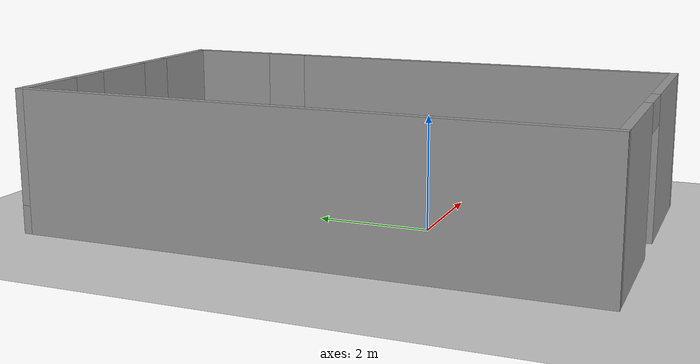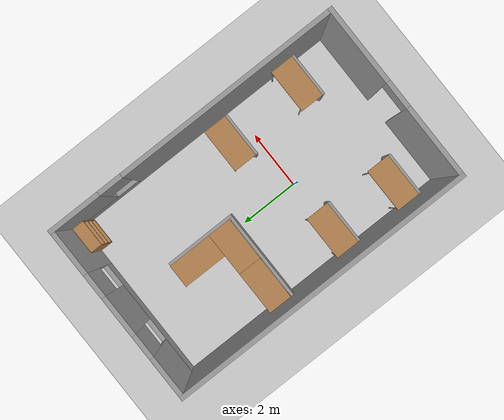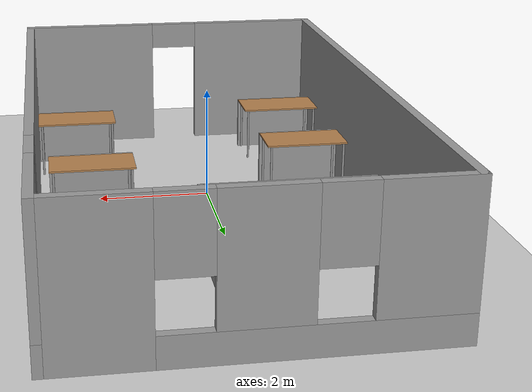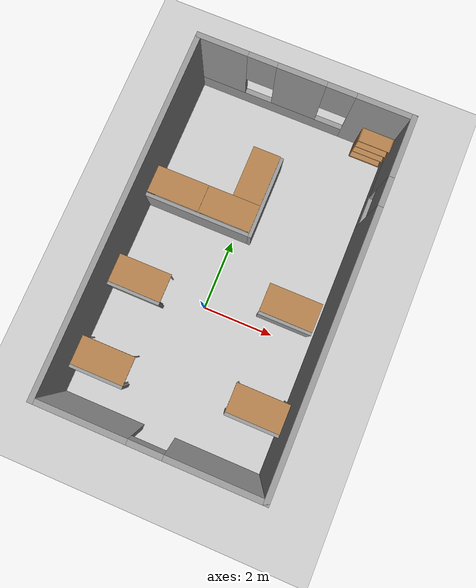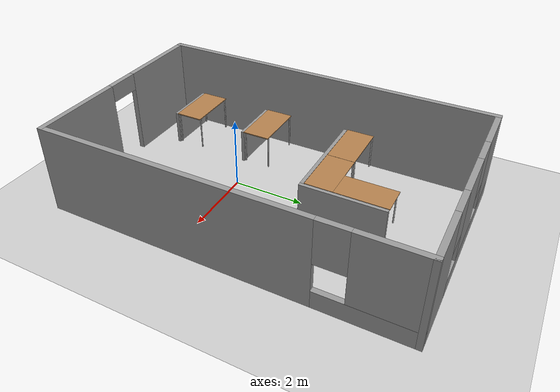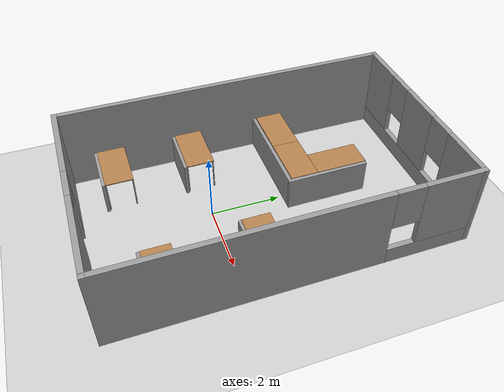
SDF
<sdf version="1.7">
 <world name="default">
  <light name="sun" type="directional">
   <pose>0 0 10 0 -0 0</pose>
   <diffuse>0.8 0.8 0.8 1</diffuse>
   <specular>0.2 0.2 0.2 1</specular>
   <attenuation>
    <range>1000</range>
    <constant>0.9</constant>
    <linear>0.01</linear>
    <quadratic>0.001</quadratic>
   </attenuation>
   <direction>-0.5 0.1 -0.9</direction>
   <spot><inner_angle>0</inner_angle><outer_angle>0</outer_angle><falloff>0</falloff></spot>
  </light>
  <model name="ground_plane">
   <static>1</static>
   <link name="link">
    <collision name="collision">
     <geometry><plane><normal>0 0 1</normal><size>100 100</size></plane></geometry>
     <surface>
      <contact><collide_bitmask>65535</collide_bitmask></contact>
      <friction><ode><mu>100</mu><mu2>50</mu2></ode></friction>
     </surface>
    </collision>
    <visual name="visual">
     <cast_shadows>0</cast_shadows>
     <geometry><plane><normal>0 0 1</normal><size>100 100</size></plane></geometry>
     <material>
      <script><uri>file://media/materials/scripts/gazebo.material</uri><name>Gazebo/Grey</name></script>
     </material>
    </visual>
   </link>
  </model>
  <gravity>0 0 -9.8</gravity>
  <magnetic_field>6e-06 2.3e-05 -4.2e-05</magnetic_field>
  <atmosphere type="adiabatic"/>
  <physics type="ode">
   <max_step_size>0.001</max_step_size>
   <real_time_factor>1</real_time_factor>
   <real_time_update_rate>1000</real_time_update_rate>
  </physics>
  <scene><ambient>0.4 0.4 0.4 1</ambient><background>0.7 0.7 0.7 1</background><shadows>1</shadows></scene>
  <spherical_coordinates>
   <surface_model>EARTH_WGS84</surface_model>
   <latitude_deg>0</latitude_deg>
   <longitude_deg>0</longitude_deg>
   <elevation>0</elevation>
   <heading_deg>0</heading_deg>
  </spherical_coordinates>
  <model name="Office">
   <pose>0.240919 1.3044 0 0 -0 0</pose>
   <link name="Wall_19">
    <collision name="Wall_19_Collision">
     <geometry><box><size>10 0.15 2.5</size></box></geometry>
     <pose>0 0 1.25 0 -0 0</pose>
    </collision>
    <visual name="Wall_19_Visual">
     <pose>0 0 1.25 0 -0 0</pose>
     <geometry><box><size>10 0.15 2.5</size></box></geometry>
     <material>
      <script><uri>file://media/materials/scripts/gazebo.material</uri><name>Gazebo/Grey</name></script>
      <ambient>1 1 1 1</ambient>
     </material>
     <meta><layer>0</layer></meta>
    </visual>
    <pose>-2.925 -0 0 0 -0 -1.5708</pose>
   </link>
   <link name="Wall_20">
    <pose>0 -4.925 0 0 -0 0</pose>
    <visual name="Wall_20_Visual_0">
     <pose>-1.75498 0 1.25 0 -0 0</pose>
     <geometry><box><size>2.49004 0.15 2.5</size></box></geometry>
     <material>
      <script><uri>file://media/materials/scripts/gazebo.material</uri><name>Gazebo/Grey</name></script>
      <ambient>1 1 1 1</ambient>
     </material>
     <meta><layer>0</layer></meta>
    </visual>
    <collision name="Wall_20_Collision_0">
     <geometry><box><size>2.49004 0.15 2.5</size></box></geometry>
     <pose>-1.75498 0 1.25 0 -0 0</pose>
    </collision>
    <visual name="Wall_20_Visual_1">
     <pose>1.69502 0 1.25 0 -0 0</pose>
     <geometry><box><size>2.60996 0.15 2.5</size></box></geometry>
     <material>
      <script><uri>file://media/materials/scripts/gazebo.material</uri><name>Gazebo/Grey</name></script>
      <ambient>1 1 1 1</ambient>
     </material>
     <meta><layer>0</layer></meta>
    </visual>
    <collision name="Wall_20_Collision_1">
     <geometry><box><size>2.60996 0.15 2.5</size></box></geometry>
     <pose>1.69502 0 1.25 0 -0 0</pose>
    </collision>
    <visual name="Wall_20_Visual_2">
     <pose>-0.05996 0 2.25 0 -0 0</pose>
     <geometry><box><size>0.9 0.15 0.5</size></box></geometry>
     <material>
      <script><uri>file://media/materials/scripts/gazebo.material</uri><name>Gazebo/Grey</name></script>
      <ambient>1 1 1 1</ambient>
     </material>
     <meta><layer>0</layer></meta>
    </visual>
    <collision name="Wall_20_Collision_2">
     <geometry><box><size>0.9 0.15 0.5</size></box></geometry>
     <pose>-0.05996 0 2.25 0 -0 0</pose>
    </collision>
   </link>
   <link name="Wall_21">
    <pose>2.925 -0 0 0 -0 1.5708</pose>
    <visual name="Wall_21_Visual_0">
     <pose>-1.26886 0 1.25 0 -0 0</pose>
     <geometry><box><size>7.46229 0.15 2.5</size></box></geometry>
     <material>
      <script><uri>file://media/materials/scripts/gazebo.material</uri><name>Gazebo/Grey</name></script>
      <ambient>1 1 1 1</ambient>
     </material>
     <meta><layer>0</layer></meta>
    </visual>
    <collision name="Wall_21_Collision_0">
     <geometry><box><size>7.46229 0.15 2.5</size></box></geometry>
     <pose>-1.26886 0 1.25 0 -0 0</pose>
    </collision>
    <visual name="Wall_21_Visual_1">
     <pose>3.73115 0 0.25 0 -0 0</pose>
     <geometry><box><size>2.53771 0.15 0.5</size></box></geometry>
     <material>
      <script><uri>file://media/materials/scripts/gazebo.material</uri><name>Gazebo/Grey</name></script>
      <ambient>1 1 1 1</ambient>
     </material>
     <meta><layer>0</layer></meta>
    </visual>
    <collision name="Wall_21_Collision_1">
     <geometry><box><size>2.53771 0.15 0.5</size></box></geometry>
     <pose>3.73115 0 0.25 0 -0 0</pose>
    </collision>
    <visual name="Wall_21_Visual_2">
     <pose>4.13115 0 1.5 0 -0 0</pose>
     <geometry><box><size>1.73771 0.15 2</size></box></geometry>
     <material>
      <script><uri>file://media/materials/scripts/gazebo.material</uri><name>Gazebo/Grey</name></script>
      <ambient>1 1 1 1</ambient>
     </material>
     <meta><layer>0</layer></meta>
    </visual>
    <collision name="Wall_21_Collision_2">
     <geometry><box><size>1.73771 0.15 2</size></box></geometry>
     <pose>4.13115 0 1.5 0 -0 0</pose>
    </collision>
    <visual name="Wall_21_Visual_3">
     <pose>2.86229 0 1.9 0 -0 0</pose>
     <geometry><box><size>0.8 0.15 1.2</size></box></geometry>
     <material>
      <script><uri>file://media/materials/scripts/gazebo.material</uri><name>Gazebo/Grey</name></script>
      <ambient>1 1 1 1</ambient>
     </material>
     <meta><layer>0</layer></meta>
    </visual>
    <collision name="Wall_21_Collision_3">
     <geometry><box><size>0.8 0.15 1.2</size></box></geometry>
     <pose>2.86229 0 1.9 0 -0 0</pose>
    </collision>
   </link>
   <link name="Wall_22">
    <pose>0 4.925 0 0 -0 3.14159</pose>
    <visual name="Wall_22_Visual_0">
     <pose>-2.1977 0 1.25 0 -0 0</pose>
     <geometry><box><size>1.6046 0.15 2.5</size></box></geometry>
     <material>
      <script><uri>file://media/materials/scripts/gazebo.material</uri><name>Gazebo/Grey</name></script>
      <ambient>1 1 1 1</ambient>
     </material>
     <meta><layer>0</layer></meta>
    </visual>
    <collision name="Wall_22_Collision_0">
     <geometry><box><size>1.6046 0.15 2.5</size></box></geometry>
     <pose>-2.1977 0 1.25 0 -0 0</pose>
    </collision>
    <visual name="Wall_22_Visual_1">
     <pose>0.802298 0 0.25 0 -0 0</pose>
     <geometry><box><size>4.3954 0.15 0.5</size></box></geometry>
     <material>
      <script><uri>file://media/materials/scripts/gazebo.material</uri><name>Gazebo/Grey</name></script>
      <ambient>1 1 1 1</ambient>
     </material>
     <meta><layer>0</layer></meta>
    </visual>
    <collision name="Wall_22_Collision_1">
     <geometry><box><size>4.3954 0.15 0.5</size></box></geometry>
     <pose>0.802298 0 0.25 0 -0 0</pose>
    </collision>
    <visual name="Wall_22_Visual_2">
     <pose>0.077549 0 1.5 0 -0 0</pose>
     <geometry><box><size>1.3459 0.15 2</size></box></geometry>
     <material>
      <script><uri>file://media/materials/scripts/gazebo.material</uri><name>Gazebo/Grey</name></script>
      <ambient>1 1 1 1</ambient>
     </material>
     <meta><layer>0</layer></meta>
    </visual>
    <collision name="Wall_22_Collision_2">
     <geometry><box><size>1.3459 0.15 2</size></box></geometry>
     <pose>0.077549 0 1.5 0 -0 0</pose>
    </collision>
    <visual name="Wall_22_Visual_3">
     <pose>2.27525 0 1.5 0 -0 0</pose>
     <geometry><box><size>1.4495 0.15 2</size></box></geometry>
     <material>
      <script><uri>file://media/materials/scripts/gazebo.material</uri><name>Gazebo/Grey</name></script>
      <ambient>1 1 1 1</ambient>
     </material>
     <meta><layer>0</layer></meta>
    </visual>
    <collision name="Wall_22_Collision_3">
     <geometry><box><size>1.4495 0.15 2</size></box></geometry>
     <pose>2.27525 0 1.5 0 -0 0</pose>
    </collision>
    <visual name="Wall_22_Visual_4">
     <pose>-0.995403 0 1.9 0 -0 0</pose>
     <geometry><box><size>0.8 0.15 1.2</size></box></geometry>
     <material>
      <script><uri>file://media/materials/scripts/gazebo.material</uri><name>Gazebo/Grey</name></script>
      <ambient>1 1 1 1</ambient>
     </material>
     <meta><layer>0</layer></meta>
    </visual>
    <collision name="Wall_22_Collision_4">
     <geometry><box><size>0.8 0.15 1.2</size></box></geometry>
     <pose>-0.995403 0 1.9 0 -0 0</pose>
    </collision>
    <visual name="Wall_22_Visual_5">
     <pose>1.1505 0 1.9 0 -0 0</pose>
     <geometry><box><size>0.8 0.15 1.2</size></box></geometry>
     <material>
      <script><uri>file://media/materials/scripts/gazebo.material</uri><name>Gazebo/Grey</name></script>
      <ambient>1 1 1 1</ambient>
     </material>
     <meta><layer>0</layer></meta>
    </visual>
    <collision name="Wall_22_Collision_5">
     <geometry><box><size>0.8 0.15 1.2</size></box></geometry>
     <pose>1.1505 0 1.9 0 -0 0</pose>
    </collision>
   </link>
   <static>1</static>
  </model>
  <model name="table_5_0">
   <link name="link_3">
    <inertial>
     <mass>0.130533</mass>
     <inertia>
      <ixx>0.0109602</ixx>
      <ixy>0</ixy>
      <ixz>0</ixz>
      <iyy>0.0353327</iyy>
      <iyz>0</iyz>
      <izz>0.0245374</izz>
     </inertia>
    </inertial>
    <pose>-3.20461 -3.49782 0.5 0 -0 0</pose>
    <visual name="visual">
     <geometry><box><size>1.49938 0.08705 1</size></box></geometry>
     <material>
      <lighting>1</lighting>
      <script><uri>file://media/materials/scripts/gazebo.material</uri><name>Gazebo/Grey</name></script>
      <shader type="pixel"/>
      <emissive>0 0 0 1</emissive>
     </material>
    </visual>
    <collision name="collision">
     <geometry><box><size>1.49938 0.08705 1</size></box></geometry>
     <surface>
      <friction>
       <ode><mu>1</mu><mu2>1</mu2><fdir1>0 0 0</fdir1><slip1>0</slip1><slip2>0</slip2></ode>
       <torsional>
        <coefficient>1</coefficient>
        <patch_radius>0</patch_radius>
        <surface_radius>0</surface_radius>
        <use_patch_radius>1</use_patch_radius>
        <ode><slip>0</slip></ode>
       </torsional>
      </friction>
      <bounce><restitution_coefficient>0</restitution_coefficient><threshold>1e+06</threshold></bounce>
      <contact>
       <collide_without_contact>0</collide_without_contact>
       <collide_without_contact_bitmask>1</collide_without_contact_bitmask>
       <collide_bitmask>1</collide_bitmask>
       <ode>
        <soft_cfm>0</soft_cfm>
        <soft_erp>0.2</soft_erp>
        <kp>1e+13</kp>
        <kd>1</kd>
        <max_vel>0.01</max_vel>
        <min_depth>0</min_depth>
       </ode>
       <bullet>
        <split_impulse>1</split_impulse>
        <split_impulse_penetration_threshold>-0.01</split_impulse_penetration_threshold>
        <soft_cfm>0</soft_cfm>
        <soft_erp>0.2</soft_erp>
        <kp>1e+13</kp>
        <kd>1</kd>
       </bullet>
      </contact>
     </surface>
    </collision>
   </link>
   <model name="table">
    <static>1</static>
    <link name="link">
     <collision name="surface">
      <pose>0 0 1 0 -0 0</pose>
      <geometry><box><size>1.5 0.8 0.03</size></box></geometry>
      <surface><friction><ode><mu>0.6</mu><mu2>0.6</mu2></ode></friction></surface>
     </collision>
     <visual name="visual1">
      <pose>0 0 1 0 -0 0</pose>
      <geometry><box><size>1.5 0.8 0.03</size></box></geometry>
      <material>
       <script><uri>file://media/materials/scripts/gazebo.material</uri><name>Gazebo/Wood</name></script>
      </material>
     </visual>
     <collision name="front_left_leg">
      <pose>0.68 0.38 0.5 0 -0 0</pose>
      <geometry><cylinder><radius>0.02</radius><length>1</length></cylinder></geometry>
     </collision>
     <visual name="front_left_leg">
      <pose>0.68 0.38 0.5 0 -0 0</pose>
      <geometry><cylinder><radius>0.02</radius><length>1</length></cylinder></geometry>
      <material>
       <script><uri>file://media/materials/scripts/gazebo.material</uri><name>Gazebo/Grey</name></script>
      </material>
     </visual>
     <collision name="front_right_leg">
      <pose>0.68 -0.38 0.5 0 -0 0</pose>
      <geometry><cylinder><radius>0.02</radius><length>1</length></cylinder></geometry>
     </collision>
     <visual name="front_right_leg">
      <pose>0.68 -0.38 0.5 0 -0 0</pose>
      <geometry><cylinder><radius>0.02</radius><length>1</length></cylinder></geometry>
      <material>
       <script><uri>file://media/materials/scripts/gazebo.material</uri><name>Gazebo/Grey</name></script>
      </material>
     </visual>
     <collision name="back_right_leg">
      <pose>-0.68 -0.38 0.5 0 -0 0</pose>
      <geometry><cylinder><radius>0.02</radius><length>1</length></cylinder></geometry>
     </collision>
     <visual name="back_right_leg">
      <pose>-0.68 -0.38 0.5 0 -0 0</pose>
      <geometry><cylinder><radius>0.02</radius><length>1</length></cylinder></geometry>
      <material>
       <script><uri>file://media/materials/scripts/gazebo.material</uri><name>Gazebo/Grey</name></script>
      </material>
     </visual>
     <collision name="back_left_leg">
      <pose>-0.68 0.38 0.5 0 -0 0</pose>
      <geometry><cylinder><radius>0.02</radius><length>1</length></cylinder></geometry>
     </collision>
     <visual name="back_left_leg">
      <pose>-0.68 0.38 0.5 0 -0 0</pose>
      <geometry><cylinder><radius>0.02</radius><length>1</length></cylinder></geometry>
      <material>
       <script><uri>file://media/materials/scripts/gazebo.material</uri><name>Gazebo/Grey</name></script>
      </material>
     </visual>
    </link>
    <pose>-3.20351 -3.05374 0 0 -0 0</pose>
   </model>
   <joint name="link_3_JOINT_3" type="fixed">
    <parent>table::link</parent>
    <child>link_3</child>
    <physics>
     <ode><limit><cfm>0</cfm><erp>0.2</erp></limit><suspension><cfm>0</cfm><erp>0.2</erp></suspension></ode>
    </physics>
   </joint>
   <static>0</static>
   <pose>5.53797 1.15598 0 0 -0 0</pose>
  </model>
  <model name="table_5_2">
   <link name="link_3">
    <inertial>
     <mass>0.130533</mass>
     <inertia>
      <ixx>0.0109602</ixx>
      <ixy>0</ixy>
      <ixz>0</ixz>
      <iyy>0.0353327</iyy>
      <iyz>0</iyz>
      <izz>0.0245374</izz>
     </inertia>
    </inertial>
    <pose>-3.20461 -3.49782 0.5 0 -0 0</pose>
    <visual name="visual">
     <geometry><box><size>1.49938 0.08705 1</size></box></geometry>
     <material>
      <lighting>1</lighting>
      <script><uri>file://media/materials/scripts/gazebo.material</uri><name>Gazebo/Grey</name></script>
      <shader type="pixel"/>
      <emissive>0 0 0 1</emissive>
     </material>
    </visual>
    <collision name="collision">
     <geometry><box><size>1.49938 0.08705 1</size></box></geometry>
     <surface>
      <friction>
       <ode><mu>1</mu><mu2>1</mu2><fdir1>0 0 0</fdir1><slip1>0</slip1><slip2>0</slip2></ode>
       <torsional>
        <coefficient>1</coefficient>
        <patch_radius>0</patch_radius>
        <surface_radius>0</surface_radius>
        <use_patch_radius>1</use_patch_radius>
        <ode><slip>0</slip></ode>
       </torsional>
      </friction>
      <bounce><restitution_coefficient>0</restitution_coefficient><threshold>1e+06</threshold></bounce>
      <contact>
       <collide_without_contact>0</collide_without_contact>
       <collide_without_contact_bitmask>1</collide_without_contact_bitmask>
       <collide_bitmask>1</collide_bitmask>
       <ode>
        <soft_cfm>0</soft_cfm>
        <soft_erp>0.2</soft_erp>
        <kp>1e+13</kp>
        <kd>1</kd>
        <max_vel>0.01</max_vel>
        <min_depth>0</min_depth>
       </ode>
       <bullet>
        <split_impulse>1</split_impulse>
        <split_impulse_penetration_threshold>-0.01</split_impulse_penetration_threshold>
        <soft_cfm>0</soft_cfm>
        <soft_erp>0.2</soft_erp>
        <kp>1e+13</kp>
        <kd>1</kd>
       </bullet>
      </contact>
     </surface>
    </collision>
   </link>
   <model name="table">
    <static>1</static>
    <link name="link">
     <collision name="surface">
      <pose>0 0 1 0 -0 0</pose>
      <geometry><box><size>1.5 0.8 0.03</size></box></geometry>
      <surface><friction><ode><mu>0.6</mu><mu2>0.6</mu2></ode></friction></surface>
     </collision>
     <visual name="visual1">
      <pose>0 0 1 0 -0 0</pose>
      <geometry><box><size>1.5 0.8 0.03</size></box></geometry>
      <material>
       <script><uri>file://media/materials/scripts/gazebo.material</uri><name>Gazebo/Wood</name></script>
      </material>
     </visual>
     <collision name="front_left_leg">
      <pose>0.68 0.38 0.5 0 -0 0</pose>
      <geometry><cylinder><radius>0.02</radius><length>1</length></cylinder></geometry>
     </collision>
     <visual name="front_left_leg">
      <pose>0.68 0.38 0.5 0 -0 0</pose>
      <geometry><cylinder><radius>0.02</radius><length>1</length></cylinder></geometry>
      <material>
       <script><uri>file://media/materials/scripts/gazebo.material</uri><name>Gazebo/Grey</name></script>
      </material>
     </visual>
     <collision name="front_right_leg">
      <pose>0.68 -0.38 0.5 0 -0 0</pose>
      <geometry><cylinder><radius>0.02</radius><length>1</length></cylinder></geometry>
     </collision>
     <visual name="front_right_leg">
      <pose>0.68 -0.38 0.5 0 -0 0</pose>
      <geometry><cylinder><radius>0.02</radius><length>1</length></cylinder></geometry>
      <material>
       <script><uri>file://media/materials/scripts/gazebo.material</uri><name>Gazebo/Grey</name></script>
      </material>
     </visual>
     <collision name="back_right_leg">
      <pose>-0.68 -0.38 0.5 0 -0 0</pose>
      <geometry><cylinder><radius>0.02</radius><length>1</length></cylinder></geometry>
     </collision>
     <visual name="back_right_leg">
      <pose>-0.68 -0.38 0.5 0 -0 0</pose>
      <geometry><cylinder><radius>0.02</radius><length>1</length></cylinder></geometry>
      <material>
       <script><uri>file://media/materials/scripts/gazebo.material</uri><name>Gazebo/Grey</name></script>
      </material>
     </visual>
     <collision name="back_left_leg">
      <pose>-0.68 0.38 0.5 0 -0 0</pose>
      <geometry><cylinder><radius>0.02</radius><length>1</length></cylinder></geometry>
     </collision>
     <visual name="back_left_leg">
      <pose>-0.68 0.38 0.5 0 -0 0</pose>
      <geometry><cylinder><radius>0.02</radius><length>1</length></cylinder></geometry>
      <material>
       <script><uri>file://media/materials/scripts/gazebo.material</uri><name>Gazebo/Grey</name></script>
      </material>
     </visual>
    </link>
    <pose>-3.20351 -3.05374 0 0 -0 0</pose>
   </model>
   <joint name="link_3_JOINT_3" type="fixed">
    <parent>table::link</parent>
    <child>link_3</child>
    <physics>
     <ode><limit><cfm>0</cfm><erp>0.2</erp></limit><suspension><cfm>0</cfm><erp>0.2</erp></suspension></ode>
    </physics>
   </joint>
   <static>0</static>
   <pose>5.3714 3.87008 0 0 -0 0</pose>
  </model>
  <model name="table_7">
   <model name="table_6">
    <link name="link_0">
     <inertial>
      <mass>0.303459</mass>
      <inertia>
       <ixx>0.0255487</ixx>
       <ixy>0</ixy>
       <ixz>0</ixz>
       <iyy>0.252958</iyy>
       <iyz>0</iyz>
       <izz>0.22793</izz>
      </inertia>
     </inertial>
     <pose>-0.527803 -0.738971 0.3 0 -0 0</pose>
     <visual name="visual">
      <pose>0 0 0.2 0 -0 0</pose>
      <geometry><box><size>3.0005 0.101492 1</size></box></geometry>
      <material>
       <lighting>1</lighting>
       <script><uri>file://media/materials/scripts/gazebo.material</uri><name>Gazebo/Grey</name></script>
       <shader type="pixel"/>
       <emissive>0 0 0 1</emissive>
      </material>
     </visual>
     <collision name="collision">
      <pose>0 0 0.2 0 -0 0</pose>
      <geometry><box><size>3.0005 0.101492 1</size></box></geometry>
      <surface>
       <friction>
        <ode><mu>1</mu><mu2>1</mu2><fdir1>0 0 0</fdir1><slip1>0</slip1><slip2>0</slip2></ode>
        <torsional>
         <coefficient>1</coefficient>
         <patch_radius>0</patch_radius>
         <surface_radius>0</surface_radius>
         <use_patch_radius>1</use_patch_radius>
         <ode><slip>0</slip></ode>
        </torsional>
       </friction>
       <bounce><restitution_coefficient>0</restitution_coefficient><threshold>1e+06</threshold></bounce>
       <contact>
        <collide_without_contact>0</collide_without_contact>
        <collide_without_contact_bitmask>1</collide_without_contact_bitmask>
        <collide_bitmask>1</collide_bitmask>
        <ode>
         <soft_cfm>0</soft_cfm>
         <soft_erp>0.2</soft_erp>
         <kp>1e+13</kp>
         <kd>1</kd>
         <max_vel>0.01</max_vel>
         <min_depth>0</min_depth>
        </ode>
        <bullet>
         <split_impulse>1</split_impulse>
         <split_impulse_penetration_threshold>-0.01</split_impulse_penetration_threshold>
         <soft_cfm>0</soft_cfm>
         <soft_erp>0.2</soft_erp>
         <kp>1e+13</kp>
         <kd>1</kd>
        </bullet>
       </contact>
      </surface>
     </collision>
    </link>
    <link name="link_0_clone">
     <inertial>
      <mass>0.24261</mass>
      <inertia>
       <ixx>0.0204257</ixx>
       <ixy>0</ixy>
       <ixz>0</ixz>
       <iyy>0.136557</iyy>
       <iyz>0</iyz>
       <izz>0.116548</izz>
      </inertia>
     </inertial>
     <pose>1.01932 0.409769 0.3 0 -0 1.57322</pose>
     <visual name="visual">
      <pose>0 0 0.2 0 -0 0</pose>
      <geometry><box><size>2.39884 0.101492 1</size></box></geometry>
      <material>
       <lighting>1</lighting>
       <script><uri>file://media/materials/scripts/gazebo.material</uri><name>Gazebo/Grey</name></script>
       <shader type="pixel"/>
       <emissive>0 0 0 1</emissive>
      </material>
     </visual>
     <collision name="collision">
      <pose>0 0 0.2 0 -0 0</pose>
      <geometry><box><size>2.39884 0.101492 1</size></box></geometry>
      <surface>
       <friction>
        <ode><mu>1</mu><mu2>1</mu2><fdir1>0 0 0</fdir1><slip1>0</slip1><slip2>0</slip2></ode>
        <torsional>
         <coefficient>1</coefficient>
         <patch_radius>0</patch_radius>
         <surface_radius>0</surface_radius>
         <use_patch_radius>1</use_patch_radius>
         <ode><slip>0</slip></ode>
        </torsional>
       </friction>
       <bounce><restitution_coefficient>0</restitution_coefficient><threshold>1e+06</threshold></bounce>
       <contact>
        <collide_without_contact>0</collide_without_contact>
        <collide_without_contact_bitmask>1</collide_without_contact_bitmask>
        <collide_bitmask>1</collide_bitmask>
        <ode>
         <soft_cfm>0</soft_cfm>
         <soft_erp>0.2</soft_erp>
         <kp>1e+13</kp>
         <kd>1</kd>
         <max_vel>0.01</max_vel>
         <min_depth>0</min_depth>
        </ode>
        <bullet>
         <split_impulse>1</split_impulse>
         <split_impulse_penetration_threshold>-0.01</split_impulse_penetration_threshold>
         <soft_cfm>0</soft_cfm>
         <soft_erp>0.2</soft_erp>
         <kp>1e+13</kp>
         <kd>1</kd>
        </bullet>
       </contact>
      </surface>
     </collision>
    </link>
    <model name="table">
     <static>1</static>
     <link name="link">
      <collision name="surface">
       <pose>0 0 1 0 -0 0</pose>
       <geometry><box><size>1.5 0.8 0.03</size></box></geometry>
       <surface><friction><ode><mu>0.6</mu><mu2>0.6</mu2></ode></friction></surface>
      </collision>
      <visual name="visual1">
       <pose>0 0 1 0 -0 0</pose>
       <geometry><box><size>1.5 0.8 0.03</size></box></geometry>
       <material>
        <script><uri>file://media/materials/scripts/gazebo.material</uri><name>Gazebo/Wood</name></script>
       </material>
      </visual>
      <collision name="front_left_leg">
       <pose>0.68 0.38 0.5 0 -0 0</pose>
       <geometry><cylinder><radius>0.02</radius><length>1</length></cylinder></geometry>
      </collision>
      <visual name="front_left_leg">
       <pose>0.68 0.38 0.5 0 -0 0</pose>
       <geometry><cylinder><radius>0.02</radius><length>1</length></cylinder></geometry>
       <material>
        <script><uri>file://media/materials/scripts/gazebo.material</uri><name>Gazebo/Grey</name></script>
       </material>
      </visual>
      <collision name="front_right_leg">
       <pose>0.68 -0.38 0.5 0 -0 0</pose>
       <geometry><cylinder><radius>0.02</radius><length>1</length></cylinder></geometry>
      </collision>
      <visual name="front_right_leg">
       <pose>0.68 -0.38 0.5 0 -0 0</pose>
       <geometry><cylinder><radius>0.02</radius><length>1</length></cylinder></geometry>
       <material>
        <script><uri>file://media/materials/scripts/gazebo.material</uri><name>Gazebo/Grey</name></script>
       </material>
      </visual>
      <collision name="back_right_leg">
       <pose>-0.68 -0.38 0.5 0 -0 0</pose>
       <geometry><cylinder><radius>0.02</radius><length>1</length></cylinder></geometry>
      </collision>
      <visual name="back_right_leg">
       <pose>-0.68 -0.38 0.5 0 -0 0</pose>
       <geometry><cylinder><radius>0.02</radius><length>1</length></cylinder></geometry>
       <material>
        <script><uri>file://media/materials/scripts/gazebo.material</uri><name>Gazebo/Grey</name></script>
       </material>
      </visual>
      <collision name="back_left_leg">
       <pose>-0.68 0.38 0.5 0 -0 0</pose>
       <geometry><cylinder><radius>0.02</radius><length>1</length></cylinder></geometry>
      </collision>
      <visual name="back_left_leg">
       <pose>-0.68 0.38 0.5 0 -0 0</pose>
       <geometry><cylinder><radius>0.02</radius><length>1</length></cylinder></geometry>
       <material>
        <script><uri>file://media/materials/scripts/gazebo.material</uri><name>Gazebo/Grey</name></script>
       </material>
      </visual>
     </link>
     <pose>-1.28127 -0.273662 0 0 -0 0</pose>
    </model>
    <model name="table_0">
     <static>1</static>
     <link name="link">
      <collision name="surface">
       <pose>0 0 1 0 -0 0</pose>
       <geometry><box><size>1.5 0.8 0.03</size></box></geometry>
       <surface><friction><ode><mu>0.6</mu><mu2>0.6</mu2></ode></friction></surface>
      </collision>
      <visual name="visual1">
       <pose>0 0 1 0 -0 0</pose>
       <geometry><box><size>1.5 0.8 0.03</size></box></geometry>
       <material>
        <script><uri>file://media/materials/scripts/gazebo.material</uri><name>Gazebo/Wood</name></script>
       </material>
      </visual>
      <collision name="front_left_leg">
       <pose>0.68 0.38 0.5 0 -0 0</pose>
       <geometry><cylinder><radius>0.02</radius><length>1</length></cylinder></geometry>
      </collision>
      <visual name="front_left_leg">
       <pose>0.68 0.38 0.5 0 -0 0</pose>
       <geometry><cylinder><radius>0.02</radius><length>1</length></cylinder></geometry>
       <material>
        <script><uri>file://media/materials/scripts/gazebo.material</uri><name>Gazebo/Grey</name></script>
       </material>
      </visual>
      <collision name="front_right_leg">
       <pose>0.68 -0.38 0.5 0 -0 0</pose>
       <geometry><cylinder><radius>0.02</radius><length>1</length></cylinder></geometry>
      </collision>
      <visual name="front_right_leg">
       <pose>0.68 -0.38 0.5 0 -0 0</pose>
       <geometry><cylinder><radius>0.02</radius><length>1</length></cylinder></geometry>
       <material>
        <script><uri>file://media/materials/scripts/gazebo.material</uri><name>Gazebo/Grey</name></script>
       </material>
      </visual>
      <collision name="back_right_leg">
       <pose>-0.68 -0.38 0.5 0 -0 0</pose>
       <geometry><cylinder><radius>0.02</radius><length>1</length></cylinder></geometry>
      </collision>
      <visual name="back_right_leg">
       <pose>-0.68 -0.38 0.5 0 -0 0</pose>
       <geometry><cylinder><radius>0.02</radius><length>1</length></cylinder></geometry>
       <material>
        <script><uri>file://media/materials/scripts/gazebo.material</uri><name>Gazebo/Grey</name></script>
       </material>
      </visual>
      <collision name="back_left_leg">
       <pose>-0.68 0.38 0.5 0 -0 0</pose>
       <geometry><cylinder><radius>0.02</radius><length>1</length></cylinder></geometry>
      </collision>
      <visual name="back_left_leg">
       <pose>-0.68 0.38 0.5 0 -0 0</pose>
       <geometry><cylinder><radius>0.02</radius><length>1</length></cylinder></geometry>
       <material>
        <script><uri>file://media/materials/scripts/gazebo.material</uri><name>Gazebo/Grey</name></script>
       </material>
      </visual>
     </link>
     <pose>0.219703 -0.273508 0 0 -0 0</pose>
    </model>
    <model name="table_1">
     <static>1</static>
     <link name="link">
      <collision name="surface">
       <pose>0 0 1 0 -0 0</pose>
       <geometry><box><size>1.5 0.8 0.03</size></box></geometry>
       <surface><friction><ode><mu>0.6</mu><mu2>0.6</mu2></ode></friction></surface>
      </collision>
      <visual name="visual1">
       <pose>0 0 1 0 -0 0</pose>
       <geometry><box><size>1.5 0.8 0.03</size></box></geometry>
       <material>
        <script><uri>file://media/materials/scripts/gazebo.material</uri><name>Gazebo/Wood</name></script>
       </material>
      </visual>
      <collision name="front_left_leg">
       <pose>0.68 0.38 0.5 0 -0 0</pose>
       <geometry><cylinder><radius>0.02</radius><length>1</length></cylinder></geometry>
      </collision>
      <visual name="front_left_leg">
       <pose>0.68 0.38 0.5 0 -0 0</pose>
       <geometry><cylinder><radius>0.02</radius><length>1</length></cylinder></geometry>
       <material>
        <script><uri>file://media/materials/scripts/gazebo.material</uri><name>Gazebo/Grey</name></script>
       </material>
      </visual>
      <collision name="front_right_leg">
       <pose>0.68 -0.38 0.5 0 -0 0</pose>
       <geometry><cylinder><radius>0.02</radius><length>1</length></cylinder></geometry>
      </collision>
      <visual name="front_right_leg">
       <pose>0.68 -0.38 0.5 0 -0 0</pose>
       <geometry><cylinder><radius>0.02</radius><length>1</length></cylinder></geometry>
       <material>
        <script><uri>file://media/materials/scripts/gazebo.material</uri><name>Gazebo/Grey</name></script>
       </material>
      </visual>
      <collision name="back_right_leg">
       <pose>-0.68 -0.38 0.5 0 -0 0</pose>
       <geometry><cylinder><radius>0.02</radius><length>1</length></cylinder></geometry>
      </collision>
      <visual name="back_right_leg">
       <pose>-0.68 -0.38 0.5 0 -0 0</pose>
       <geometry><cylinder><radius>0.02</radius><length>1</length></cylinder></geometry>
       <material>
        <script><uri>file://media/materials/scripts/gazebo.material</uri><name>Gazebo/Grey</name></script>
       </material>
      </visual>
      <collision name="back_left_leg">
       <pose>-0.68 0.38 0.5 0 -0 0</pose>
       <geometry><cylinder><radius>0.02</radius><length>1</length></cylinder></geometry>
      </collision>
      <visual name="back_left_leg">
       <pose>-0.68 0.38 0.5 0 -0 0</pose>
       <geometry><cylinder><radius>0.02</radius><length>1</length></cylinder></geometry>
       <material>
        <script><uri>file://media/materials/scripts/gazebo.material</uri><name>Gazebo/Grey</name></script>
       </material>
      </visual>
     </link>
     <pose>0.570046 0.876371 0 0 -0 1.57061</pose>
    </model>
    <joint name="link_0_JOINT_1" type="fixed">
     <parent>link_0</parent>
     <child>table_0::link</child>
     <physics>
      <ode><limit><cfm>0</cfm><erp>0.2</erp></limit><suspension><cfm>0</cfm><erp>0.2</erp></suspension></ode>
     </physics>
    </joint>
    <joint name="link_0_clone_JOINT_3" type="fixed">
     <parent>link_0_clone</parent>
     <child>table_0::link</child>
     <physics>
      <ode><limit><cfm>0</cfm><erp>0.2</erp></limit><suspension><cfm>0</cfm><erp>0.2</erp></suspension></ode>
     </physics>
    </joint>
    <joint name="link_0_clone_JOINT_4" type="fixed">
     <parent>link_0_clone</parent>
     <child>link_0</child>
     <physics>
      <ode><limit><cfm>0</cfm><erp>0.2</erp></limit><suspension><cfm>0</cfm><erp>0.2</erp></suspension></ode>
     </physics>
    </joint>
    <joint name="link_0_clone_JOINT_5" type="fixed">
     <parent>link_0_clone</parent>
     <child>table_1::link</child>
     <physics>
      <ode><limit><cfm>0</cfm><erp>0.2</erp></limit><suspension><cfm>0</cfm><erp>0.2</erp></suspension></ode>
     </physics>
    </joint>
    <joint name="link_JOINT_0" type="fixed">
     <parent>table::link</parent>
     <child>link_0</child>
     <physics>
      <ode><limit><cfm>0</cfm><erp>0.2</erp></limit><suspension><cfm>0</cfm><erp>0.2</erp></suspension></ode>
     </physics>
    </joint>
    <joint name="link_JOINT_2" type="fixed">
     <parent>table::link</parent>
     <child>table_0::link</child>
     <physics>
      <ode><limit><cfm>0</cfm><erp>0.2</erp></limit><suspension><cfm>0</cfm><erp>0.2</erp></suspension></ode>
     </physics>
    </joint>
    <joint name="link_JOINT_6" type="fixed">
     <parent>table_1::link</parent>
     <child>table_0::link</child>
     <physics>
      <ode><limit><cfm>0</cfm><erp>0.2</erp></limit><suspension><cfm>0</cfm><erp>0.2</erp></suspension></ode>
     </physics>
    </joint>
    <joint name="link_JOINT_7" type="fixed">
     <parent>table_1::link</parent>
     <child>table::link</child>
     <physics>
      <ode><limit><cfm>0</cfm><erp>0.2</erp></limit><suspension><cfm>0</cfm><erp>0.2</erp></suspension></ode>
     </physics>
    </joint>
    <static>0</static>
    <pose>-0.496127 -0.006347 0 0 -0 0</pose>
   </model>
   <joint name="link_0_JOINT_11" type="fixed">
    <parent>table_6::link_0</parent>
    <child>table_6::link_0_clone</child>
    <physics>
     <ode><limit><cfm>0</cfm><erp>0.2</erp></limit><suspension><cfm>0</cfm><erp>0.2</erp></suspension></ode>
    </physics>
   </joint>
   <joint name="link_0_JOINT_13" type="fixed">
    <parent>table_6::link_0</parent>
    <child>table_6::table::link</child>
    <physics>
     <ode><limit><cfm>0</cfm><erp>0.2</erp></limit><suspension><cfm>0</cfm><erp>0.2</erp></suspension></ode>
    </physics>
   </joint>
   <joint name="link_0_JOINT_15" type="fixed">
    <parent>table_6::link_0</parent>
    <child>table_6::table_0::link</child>
    <physics>
     <ode><limit><cfm>0</cfm><erp>0.2</erp></limit><suspension><cfm>0</cfm><erp>0.2</erp></suspension></ode>
    </physics>
   </joint>
   <joint name="link_0_clone_JOINT_12" type="fixed">
    <parent>table_6::link_0_clone</parent>
    <child>table_6::link_0</child>
    <physics>
     <ode><limit><cfm>0</cfm><erp>0.2</erp></limit><suspension><cfm>0</cfm><erp>0.2</erp></suspension></ode>
    </physics>
   </joint>
   <joint name="link_0_clone_JOINT_16" type="fixed">
    <parent>table_6::link_0_clone</parent>
    <child>table_6::table_1::link</child>
    <physics>
     <ode><limit><cfm>0</cfm><erp>0.2</erp></limit><suspension><cfm>0</cfm><erp>0.2</erp></suspension></ode>
    </physics>
   </joint>
   <static>0</static>
   <pose>-0.085163 2.93198 0.000228 -1.6e-05 -9.5e-05 3.2e-05</pose>
  </model>
  <model name="table_5_1">
   <link name="link_3">
    <inertial>
     <mass>0.130533</mass>
     <inertia>
      <ixx>0.0109602</ixx>
      <ixy>0</ixy>
      <ixz>0</ixz>
      <iyy>0.0353327</iyy>
      <iyz>0</iyz>
      <izz>0.0245374</izz>
     </inertia>
    </inertial>
    <pose>-3.20461 -3.49782 0.5 0 -0 0</pose>
    <visual name="visual">
     <geometry><box><size>1.49938 0.08705 1</size></box></geometry>
     <material>
      <lighting>1</lighting>
      <script><uri>file://media/materials/scripts/gazebo.material</uri><name>Gazebo/Grey</name></script>
      <shader type="pixel"/>
      <emissive>0 0 0 1</emissive>
     </material>
    </visual>
    <collision name="collision">
     <geometry><box><size>1.49938 0.08705 1</size></box></geometry>
     <surface>
      <friction>
       <ode><mu>1</mu><mu2>1</mu2><fdir1>0 0 0</fdir1><slip1>0</slip1><slip2>0</slip2></ode>
       <torsional>
        <coefficient>1</coefficient>
        <patch_radius>0</patch_radius>
        <surface_radius>0</surface_radius>
        <use_patch_radius>1</use_patch_radius>
        <ode><slip>0</slip></ode>
       </torsional>
      </friction>
      <bounce><restitution_coefficient>0</restitution_coefficient><threshold>1e+06</threshold></bounce>
      <contact>
       <collide_without_contact>0</collide_without_contact>
       <collide_without_contact_bitmask>1</collide_without_contact_bitmask>
       <collide_bitmask>1</collide_bitmask>
       <ode>
        <soft_cfm>0</soft_cfm>
        <soft_erp>0.2</soft_erp>
        <kp>1e+13</kp>
        <kd>1</kd>
        <max_vel>0.01</max_vel>
        <min_depth>0</min_depth>
       </ode>
       <bullet>
        <split_impulse>1</split_impulse>
        <split_impulse_penetration_threshold>-0.01</split_impulse_penetration_threshold>
        <soft_cfm>0</soft_cfm>
        <soft_erp>0.2</soft_erp>
        <kp>1e+13</kp>
        <kd>1</kd>
       </bullet>
      </contact>
     </surface>
    </collision>
   </link>
   <model name="table">
    <static>1</static>
    <link name="link">
     <collision name="surface">
      <pose>0 0 1 0 -0 0</pose>
      <geometry><box><size>1.5 0.8 0.03</size></box></geometry>
      <surface><friction><ode><mu>0.6</mu><mu2>0.6</mu2></ode></friction></surface>
     </collision>
     <visual name="visual1">
      <pose>0 0 1 0 -0 0</pose>
      <geometry><box><size>1.5 0.8 0.03</size></box></geometry>
      <material>
       <script><uri>file://media/materials/scripts/gazebo.material</uri><name>Gazebo/Wood</name></script>
      </material>
     </visual>
     <collision name="front_left_leg">
      <pose>0.68 0.38 0.5 0 -0 0</pose>
      <geometry><cylinder><radius>0.02</radius><length>1</length></cylinder></geometry>
     </collision>
     <visual name="front_left_leg">
      <pose>0.68 0.38 0.5 0 -0 0</pose>
      <geometry><cylinder><radius>0.02</radius><length>1</length></cylinder></geometry>
      <material>
       <script><uri>file://media/materials/scripts/gazebo.material</uri><name>Gazebo/Grey</name></script>
      </material>
     </visual>
     <collision name="front_right_leg">
      <pose>0.68 -0.38 0.5 0 -0 0</pose>
      <geometry><cylinder><radius>0.02</radius><length>1</length></cylinder></geometry>
     </collision>
     <visual name="front_right_leg">
      <pose>0.68 -0.38 0.5 0 -0 0</pose>
      <geometry><cylinder><radius>0.02</radius><length>1</length></cylinder></geometry>
      <material>
       <script><uri>file://media/materials/scripts/gazebo.material</uri><name>Gazebo/Grey</name></script>
      </material>
     </visual>
     <collision name="back_right_leg">
      <pose>-0.68 -0.38 0.5 0 -0 0</pose>
      <geometry><cylinder><radius>0.02</radius><length>1</length></cylinder></geometry>
     </collision>
     <visual name="back_right_leg">
      <pose>-0.68 -0.38 0.5 0 -0 0</pose>
      <geometry><cylinder><radius>0.02</radius><length>1</length></cylinder></geometry>
      <material>
       <script><uri>file://media/materials/scripts/gazebo.material</uri><name>Gazebo/Grey</name></script>
      </material>
     </visual>
     <collision name="back_left_leg">
      <pose>-0.68 0.38 0.5 0 -0 0</pose>
      <geometry><cylinder><radius>0.02</radius><length>1</length></cylinder></geometry>
     </collision>
     <visual name="back_left_leg">
      <pose>-0.68 0.38 0.5 0 -0 0</pose>
      <geometry><cylinder><radius>0.02</radius><length>1</length></cylinder></geometry>
      <material>
       <script><uri>file://media/materials/scripts/gazebo.material</uri><name>Gazebo/Grey</name></script>
      </material>
     </visual>
    </link>
    <pose>-3.20351 -3.05374 0 0 -0 0</pose>
   </model>
   <joint name="link_3_JOINT_3" type="fixed">
    <parent>table::link</parent>
    <child>link_3</child>
    <physics>
     <ode><limit><cfm>0</cfm><erp>0.2</erp></limit><suspension><cfm>0</cfm><erp>0.2</erp></suspension></ode>
    </physics>
   </joint>
   <static>0</static>
   <pose>1.38393 3.06879 0 0 -0 0</pose>
  </model>
  <model name="table_5">
   <link name="link_3">
    <inertial>
     <mass>0.130533</mass>
     <inertia>
      <ixx>0.0109602</ixx>
      <ixy>0</ixy>
      <ixz>0</ixz>
      <iyy>0.0353327</iyy>
      <iyz>0</iyz>
      <izz>0.0245374</izz>
     </inertia>
    </inertial>
    <pose>-3.20461 -3.49782 0.5 0 -0 0</pose>
    <visual name="visual">
     <geometry><box><size>1.49938 0.08705 1</size></box></geometry>
     <material>
      <lighting>1</lighting>
      <script><uri>file://media/materials/scripts/gazebo.material</uri><name>Gazebo/Grey</name></script>
      <shader type="pixel"/>
      <emissive>0 0 0 1</emissive>
     </material>
    </visual>
    <collision name="collision">
     <geometry><box><size>1.49938 0.08705 1</size></box></geometry>
     <surface>
      <friction>
       <ode><mu>1</mu><mu2>1</mu2><fdir1>0 0 0</fdir1><slip1>0</slip1><slip2>0</slip2></ode>
       <torsional>
        <coefficient>1</coefficient>
        <patch_radius>0</patch_radius>
        <surface_radius>0</surface_radius>
        <use_patch_radius>1</use_patch_radius>
        <ode><slip>0</slip></ode>
       </torsional>
      </friction>
      <bounce><restitution_coefficient>0</restitution_coefficient><threshold>1e+06</threshold></bounce>
      <contact>
       <collide_without_contact>0</collide_without_contact>
       <collide_without_contact_bitmask>1</collide_without_contact_bitmask>
       <collide_bitmask>1</collide_bitmask>
       <ode>
        <soft_cfm>0</soft_cfm>
        <soft_erp>0.2</soft_erp>
        <kp>1e+13</kp>
        <kd>1</kd>
        <max_vel>0.01</max_vel>
        <min_depth>0</min_depth>
       </ode>
       <bullet>
        <split_impulse>1</split_impulse>
        <split_impulse_penetration_threshold>-0.01</split_impulse_penetration_threshold>
        <soft_cfm>0</soft_cfm>
        <soft_erp>0.2</soft_erp>
        <kp>1e+13</kp>
        <kd>1</kd>
       </bullet>
      </contact>
     </surface>
    </collision>
   </link>
   <model name="table">
    <static>1</static>
    <link name="link">
     <collision name="surface">
      <pose>0 0 1 0 -0 0</pose>
      <geometry><box><size>1.5 0.8 0.03</size></box></geometry>
      <surface><friction><ode><mu>0.6</mu><mu2>0.6</mu2></ode></friction></surface>
     </collision>
     <visual name="visual1">
      <pose>0 0 1 0 -0 0</pose>
      <geometry><box><size>1.5 0.8 0.03</size></box></geometry>
      <material>
       <script><uri>file://media/materials/scripts/gazebo.material</uri><name>Gazebo/Wood</name></script>
      </material>
     </visual>
     <collision name="front_left_leg">
      <pose>0.68 0.38 0.5 0 -0 0</pose>
      <geometry><cylinder><radius>0.02</radius><length>1</length></cylinder></geometry>
     </collision>
     <visual name="front_left_leg">
      <pose>0.68 0.38 0.5 0 -0 0</pose>
      <geometry><cylinder><radius>0.02</radius><length>1</length></cylinder></geometry>
      <material>
       <script><uri>file://media/materials/scripts/gazebo.material</uri><name>Gazebo/Grey</name></script>
      </material>
     </visual>
     <collision name="front_right_leg">
      <pose>0.68 -0.38 0.5 0 -0 0</pose>
      <geometry><cylinder><radius>0.02</radius><length>1</length></cylinder></geometry>
     </collision>
     <visual name="front_right_leg">
      <pose>0.68 -0.38 0.5 0 -0 0</pose>
      <geometry><cylinder><radius>0.02</radius><length>1</length></cylinder></geometry>
      <material>
       <script><uri>file://media/materials/scripts/gazebo.material</uri><name>Gazebo/Grey</name></script>
      </material>
     </visual>
     <collision name="back_right_leg">
      <pose>-0.68 -0.38 0.5 0 -0 0</pose>
      <geometry><cylinder><radius>0.02</radius><length>1</length></cylinder></geometry>
     </collision>
     <visual name="back_right_leg">
      <pose>-0.68 -0.38 0.5 0 -0 0</pose>
      <geometry><cylinder><radius>0.02</radius><length>1</length></cylinder></geometry>
      <material>
       <script><uri>file://media/materials/scripts/gazebo.material</uri><name>Gazebo/Grey</name></script>
      </material>
     </visual>
     <collision name="back_left_leg">
      <pose>-0.68 0.38 0.5 0 -0 0</pose>
      <geometry><cylinder><radius>0.02</radius><length>1</length></cylinder></geometry>
     </collision>
     <visual name="back_left_leg">
      <pose>-0.68 0.38 0.5 0 -0 0</pose>
      <geometry><cylinder><radius>0.02</radius><length>1</length></cylinder></geometry>
      <material>
       <script><uri>file://media/materials/scripts/gazebo.material</uri><name>Gazebo/Grey</name></script>
      </material>
     </visual>
    </link>
    <pose>-3.20351 -3.05374 0 0 -0 0</pose>
   </model>
   <joint name="link_3_JOINT_3" type="fixed">
    <parent>table::link</parent>
    <child>link_3</child>
    <physics>
     <ode><limit><cfm>0</cfm><erp>0.2</erp></limit><suspension><cfm>0</cfm><erp>0.2</erp></suspension></ode>
    </physics>
   </joint>
   <static>0</static>
   <pose>1.37387 0.731468 0 0 -0 0</pose>
  </model>
  <model name="bookshelf">
   <link name="link">
    <inertial><mass>1</mass></inertial>
    <pose>4.6897 -0.085621 0 0 -0 0</pose>
    <visual name="visual1">
     <pose>0 0.005 0.6 0 -0 0</pose>
     <geometry><box><size>0.9 0.01 1.2</size></box></geometry>
     <material>
      <script><uri>file://media/materials/scripts/gazebo.material</uri><name>Gazebo/Wood</name></script>
      <shader type="pixel"/>
     </material>
    </visual>
    <visual name="visual2">
     <pose>0.45 -0.195 0.6 0 -0 0</pose>
     <geometry><box><size>0.02 0.4 1.2</size></box></geometry>
     <material>
      <script><uri>file://media/materials/scripts/gazebo.material</uri><name>Gazebo/Wood</name></script>
      <shader type="pixel"/>
     </material>
    </visual>
    <visual name="visual3">
     <pose>-0.45 -0.195 0.6 0 -0 0</pose>
     <geometry><box><size>0.02 0.4 1.2</size></box></geometry>
     <material>
      <script><uri>file://media/materials/scripts/gazebo.material</uri><name>Gazebo/Wood</name></script>
      <shader type="pixel"/>
     </material>
    </visual>
    <visual name="visual4">
     <pose>0 -0.195 0.03 0 -0 0</pose>
     <geometry><box><size>0.88 0.4 0.06</size></box></geometry>
     <material>
      <script><uri>file://media/materials/scripts/gazebo.material</uri><name>Gazebo/Wood</name></script>
      <shader type="pixel"/>
     </material>
    </visual>
    <visual name="visual5">
     <pose>0 -0.195 1.19 0 -0 0</pose>
     <geometry><box><size>0.88 0.4 0.02</size></box></geometry>
     <material>
      <script><uri>file://media/materials/scripts/gazebo.material</uri><name>Gazebo/Wood</name></script>
      <shader type="pixel"/>
     </material>
    </visual>
    <visual name="visual6">
     <pose>0 -0.195 0.43 0 -0 0</pose>
     <geometry><box><size>0.88 0.4 0.02</size></box></geometry>
     <material>
      <script><uri>file://media/materials/scripts/gazebo.material</uri><name>Gazebo/Wood</name></script>
      <shader type="pixel"/>
     </material>
    </visual>
    <visual name="visual7">
     <pose>0 -0.195 0.8 0 -0 0</pose>
     <geometry><box><size>0.88 0.4 0.02</size></box></geometry>
     <material>
      <script><uri>file://media/materials/scripts/gazebo.material</uri><name>Gazebo/Wood</name></script>
      <shader type="pixel"/>
     </material>
    </visual>
    <collision name="back">
     <pose>0 0.005 0.6 0 -0 0</pose>
     <geometry><box><size>0.9 0.01 1.2</size></box></geometry>
     <surface>
      <friction>
       <ode><mu>1</mu><mu2>1</mu2><fdir1>0 0 0</fdir1><slip1>0</slip1><slip2>0</slip2></ode>
       <torsional>
        <coefficient>1</coefficient>
        <patch_radius>0</patch_radius>
        <surface_radius>0</surface_radius>
        <use_patch_radius>1</use_patch_radius>
        <ode><slip>0</slip></ode>
       </torsional>
      </friction>
      <bounce><restitution_coefficient>0</restitution_coefficient><threshold>1e+06</threshold></bounce>
      <contact>
       <collide_without_contact>0</collide_without_contact>
       <collide_without_contact_bitmask>1</collide_without_contact_bitmask>
       <collide_bitmask>1</collide_bitmask>
       <ode>
        <soft_cfm>0</soft_cfm>
        <soft_erp>0.2</soft_erp>
        <kp>1e+13</kp>
        <kd>1</kd>
        <max_vel>0.01</max_vel>
        <min_depth>0</min_depth>
       </ode>
       <bullet>
        <split_impulse>1</split_impulse>
        <split_impulse_penetration_threshold>-0.01</split_impulse_penetration_threshold>
        <soft_cfm>0</soft_cfm>
        <soft_erp>0.2</soft_erp>
        <kp>1e+13</kp>
        <kd>1</kd>
       </bullet>
      </contact>
     </surface>
    </collision>
    <collision name="bottom">
     <pose>0 -0.195 0.03 0 -0 0</pose>
     <geometry><box><size>0.88 0.4 0.06</size></box></geometry>
     <surface>
      <friction>
       <ode><mu>1</mu><mu2>1</mu2><fdir1>0 0 0</fdir1><slip1>0</slip1><slip2>0</slip2></ode>
       <torsional>
        <coefficient>1</coefficient>
        <patch_radius>0</patch_radius>
        <surface_radius>0</surface_radius>
        <use_patch_radius>1</use_patch_radius>
        <ode><slip>0</slip></ode>
       </torsional>
      </friction>
      <bounce><restitution_coefficient>0</restitution_coefficient><threshold>1e+06</threshold></bounce>
      <contact>
       <collide_without_contact>0</collide_without_contact>
       <collide_without_contact_bitmask>1</collide_without_contact_bitmask>
       <collide_bitmask>1</collide_bitmask>
       <ode>
        <soft_cfm>0</soft_cfm>
        <soft_erp>0.2</soft_erp>
        <kp>1e+13</kp>
        <kd>1</kd>
        <max_vel>0.01</max_vel>
        <min_depth>0</min_depth>
       </ode>
       <bullet>
        <split_impulse>1</split_impulse>
        <split_impulse_penetration_threshold>-0.01</split_impulse_penetration_threshold>
        <soft_cfm>0</soft_cfm>
        <soft_erp>0.2</soft_erp>
        <kp>1e+13</kp>
        <kd>1</kd>
       </bullet>
      </contact>
     </surface>
    </collision>
    <collision name="left_side">
     <pose>0.45 -0.195 0.6 0 -0 0</pose>
     <geometry><box><size>0.02 0.4 1.2</size></box></geometry>
     <surface>
      <friction>
       <ode><mu>1</mu><mu2>1</mu2><fdir1>0 0 0</fdir1><slip1>0</slip1><slip2>0</slip2></ode>
       <torsional>
        <coefficient>1</coefficient>
        <patch_radius>0</patch_radius>
        <surface_radius>0</surface_radius>
        <use_patch_radius>1</use_patch_radius>
        <ode><slip>0</slip></ode>
       </torsional>
      </friction>
      <bounce><restitution_coefficient>0</restitution_coefficient><threshold>1e+06</threshold></bounce>
      <contact>
       <collide_without_contact>0</collide_without_contact>
       <collide_without_contact_bitmask>1</collide_without_contact_bitmask>
       <collide_bitmask>1</collide_bitmask>
       <ode>
        <soft_cfm>0</soft_cfm>
        <soft_erp>0.2</soft_erp>
        <kp>1e+13</kp>
        <kd>1</kd>
        <max_vel>0.01</max_vel>
        <min_depth>0</min_depth>
       </ode>
       <bullet>
        <split_impulse>1</split_impulse>
        <split_impulse_penetration_threshold>-0.01</split_impulse_penetration_threshold>
        <soft_cfm>0</soft_cfm>
        <soft_erp>0.2</soft_erp>
        <kp>1e+13</kp>
        <kd>1</kd>
       </bullet>
      </contact>
     </surface>
    </collision>
    <collision name="right_side">
     <pose>-0.45 -0.195 0.6 0 -0 0</pose>
     <geometry><box><size>0.02 0.4 1.2</size></box></geometry>
     <surface>
      <friction>
       <ode><mu>1</mu><mu2>1</mu2><fdir1>0 0 0</fdir1><slip1>0</slip1><slip2>0</slip2></ode>
       <torsional>
        <coefficient>1</coefficient>
        <patch_radius>0</patch_radius>
        <surface_radius>0</surface_radius>
        <use_patch_radius>1</use_patch_radius>
        <ode><slip>0</slip></ode>
       </torsional>
      </friction>
      <bounce><restitution_coefficient>0</restitution_coefficient><threshold>1e+06</threshold></bounce>
      <contact>
       <collide_without_contact>0</collide_without_contact>
       <collide_without_contact_bitmask>1</collide_without_contact_bitmask>
       <collide_bitmask>1</collide_bitmask>
       <ode>
        <soft_cfm>0</soft_cfm>
        <soft_erp>0.2</soft_erp>
        <kp>1e+13</kp>
        <kd>1</kd>
        <max_vel>0.01</max_vel>
        <min_depth>0</min_depth>
       </ode>
       <bullet>
        <split_impulse>1</split_impulse>
        <split_impulse_penetration_threshold>-0.01</split_impulse_penetration_threshold>
        <soft_cfm>0</soft_cfm>
        <soft_erp>0.2</soft_erp>
        <kp>1e+13</kp>
        <kd>1</kd>
       </bullet>
      </contact>
     </surface>
    </collision>
    <collision name="high_shelf">
     <pose>0 -0.195 0.8 0 -0 0</pose>
     <geometry><box><size>0.88 0.4 0.02</size></box></geometry>
     <surface>
      <friction>
       <ode><mu>1</mu><mu2>1</mu2><fdir1>0 0 0</fdir1><slip1>0</slip1><slip2>0</slip2></ode>
       <torsional>
        <coefficient>1</coefficient>
        <patch_radius>0</patch_radius>
        <surface_radius>0</surface_radius>
        <use_patch_radius>1</use_patch_radius>
        <ode><slip>0</slip></ode>
       </torsional>
      </friction>
      <bounce><restitution_coefficient>0</restitution_coefficient><threshold>1e+06</threshold></bounce>
      <contact>
       <collide_without_contact>0</collide_without_contact>
       <collide_without_contact_bitmask>1</collide_without_contact_bitmask>
       <collide_bitmask>1</collide_bitmask>
       <ode>
        <soft_cfm>0</soft_cfm>
        <soft_erp>0.2</soft_erp>
        <kp>1e+13</kp>
        <kd>1</kd>
        <max_vel>0.01</max_vel>
        <min_depth>0</min_depth>
       </ode>
       <bullet>
        <split_impulse>1</split_impulse>
        <split_impulse_penetration_threshold>-0.01</split_impulse_penetration_threshold>
        <soft_cfm>0</soft_cfm>
        <soft_erp>0.2</soft_erp>
        <kp>1e+13</kp>
        <kd>1</kd>
       </bullet>
      </contact>
     </surface>
    </collision>
    <collision name="top">
     <pose>0 -0.195 1.19 0 -0 0</pose>
     <geometry><box><size>0.88 0.4 0.02</size></box></geometry>
     <surface>
      <friction>
       <ode><mu>1</mu><mu2>1</mu2><fdir1>0 0 0</fdir1><slip1>0</slip1><slip2>0</slip2></ode>
       <torsional>
        <coefficient>1</coefficient>
        <patch_radius>0</patch_radius>
        <surface_radius>0</surface_radius>
        <use_patch_radius>1</use_patch_radius>
        <ode><slip>0</slip></ode>
       </torsional>
      </friction>
      <bounce><restitution_coefficient>0</restitution_coefficient><threshold>1e+06</threshold></bounce>
      <contact>
       <collide_without_contact>0</collide_without_contact>
       <collide_without_contact_bitmask>1</collide_without_contact_bitmask>
       <collide_bitmask>1</collide_bitmask>
       <ode>
        <soft_cfm>0</soft_cfm>
        <soft_erp>0.2</soft_erp>
        <kp>1e+13</kp>
        <kd>1</kd>
        <max_vel>0.01</max_vel>
        <min_depth>0</min_depth>
       </ode>
       <bullet>
        <split_impulse>1</split_impulse>
        <split_impulse_penetration_threshold>-0.01</split_impulse_penetration_threshold>
        <soft_cfm>0</soft_cfm>
        <soft_erp>0.2</soft_erp>
        <kp>1e+13</kp>
        <kd>1</kd>
       </bullet>
      </contact>
     </surface>
    </collision>
    <collision name="low_shelf">
     <pose>0 -0.195 0.43 0 -0 0</pose>
     <geometry><box><size>0.88 0.4 0.02</size></box></geometry>
     <surface>
      <friction>
       <ode><mu>1</mu><mu2>1</mu2><fdir1>0 0 0</fdir1><slip1>0</slip1><slip2>0</slip2></ode>
       <torsional>
        <coefficient>1</coefficient>
        <patch_radius>0</patch_radius>
        <surface_radius>0</surface_radius>
        <use_patch_radius>1</use_patch_radius>
        <ode><slip>0</slip></ode>
       </torsional>
      </friction>
      <bounce><restitution_coefficient>0</restitution_coefficient><threshold>1e+06</threshold></bounce>
      <contact>
       <collide_without_contact>0</collide_without_contact>
       <collide_without_contact_bitmask>1</collide_without_contact_bitmask>
       <collide_bitmask>1</collide_bitmask>
       <ode>
        <soft_cfm>0</soft_cfm>
        <soft_erp>0.2</soft_erp>
        <kp>1e+13</kp>
        <kd>1</kd>
        <max_vel>0.01</max_vel>
        <min_depth>0</min_depth>
       </ode>
       <bullet>
        <split_impulse>1</split_impulse>
        <split_impulse_penetration_threshold>-0.01</split_impulse_penetration_threshold>
        <soft_cfm>0</soft_cfm>
        <soft_erp>0.2</soft_erp>
        <kp>1e+13</kp>
        <kd>1</kd>
       </bullet>
      </contact>
     </surface>
    </collision>
   </link>
   <static>1</static>
   <pose>-2.07238 6.19714 0 0 -0 0</pose>
  </model>
 </world>
</sdf>
